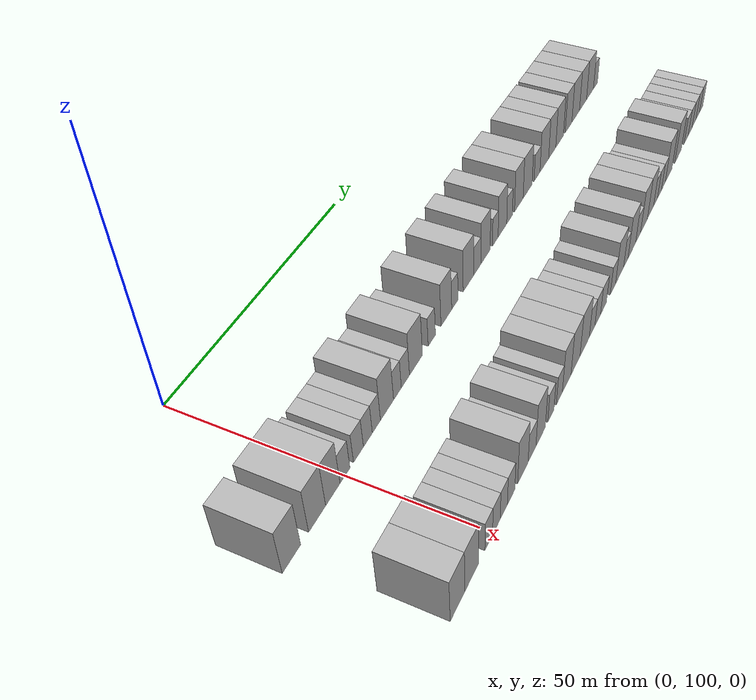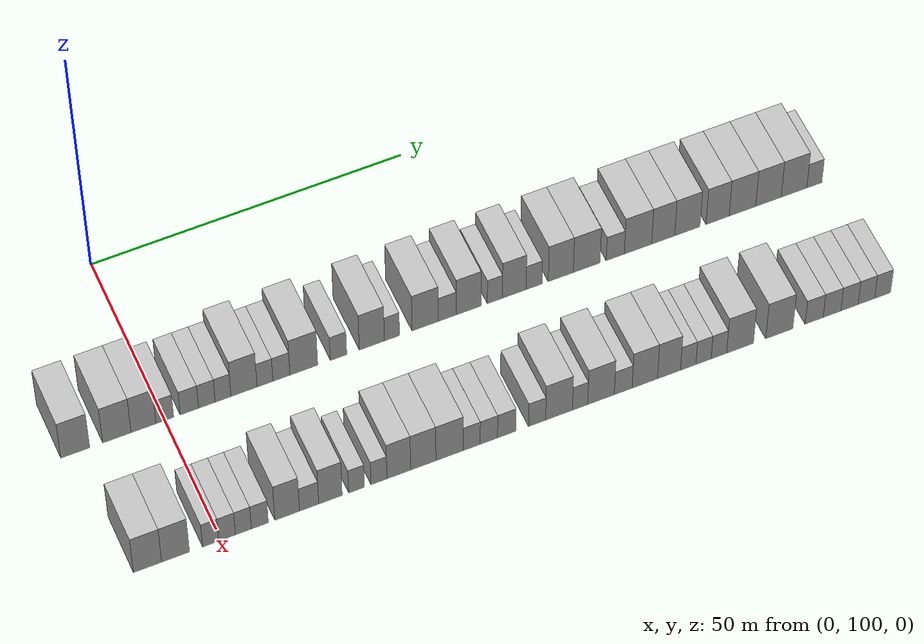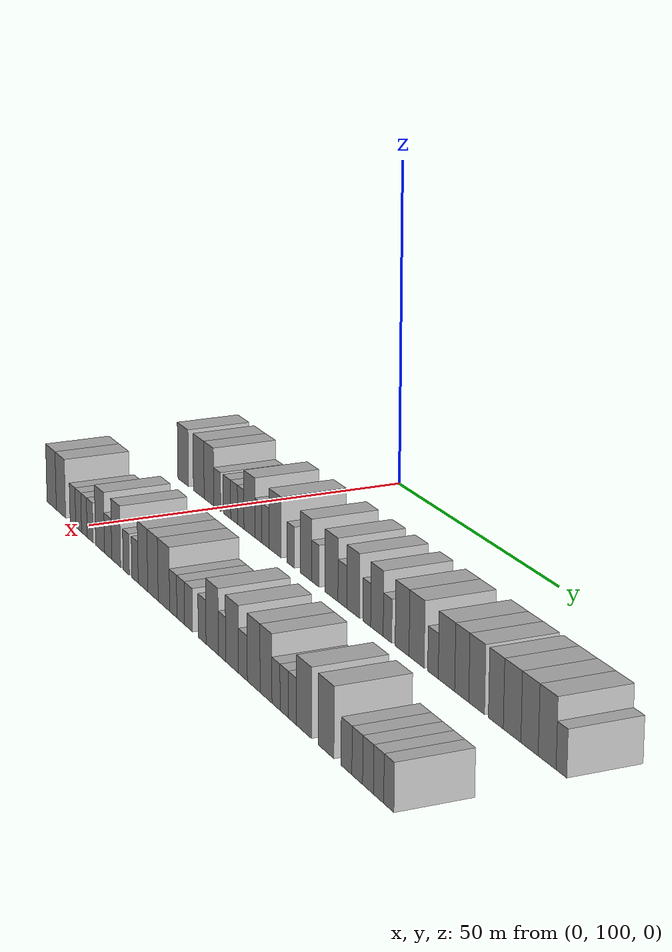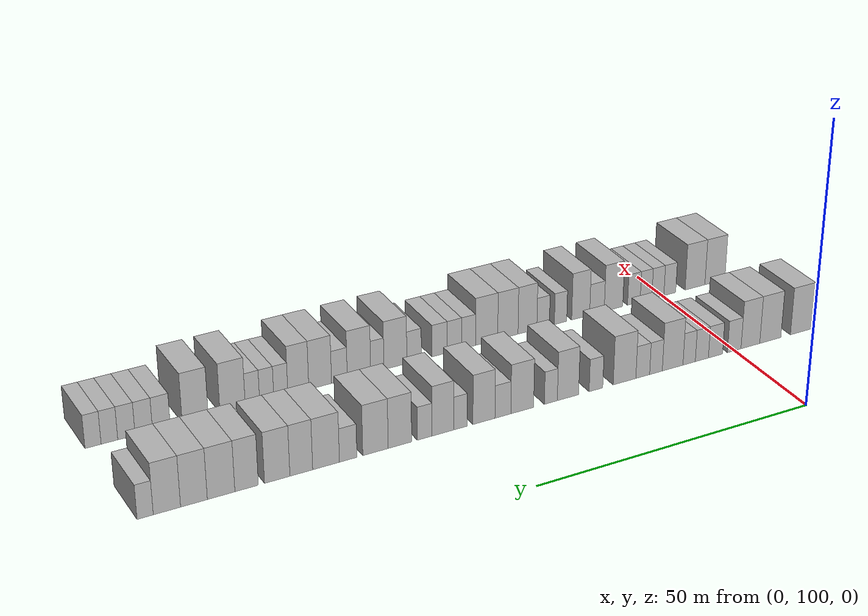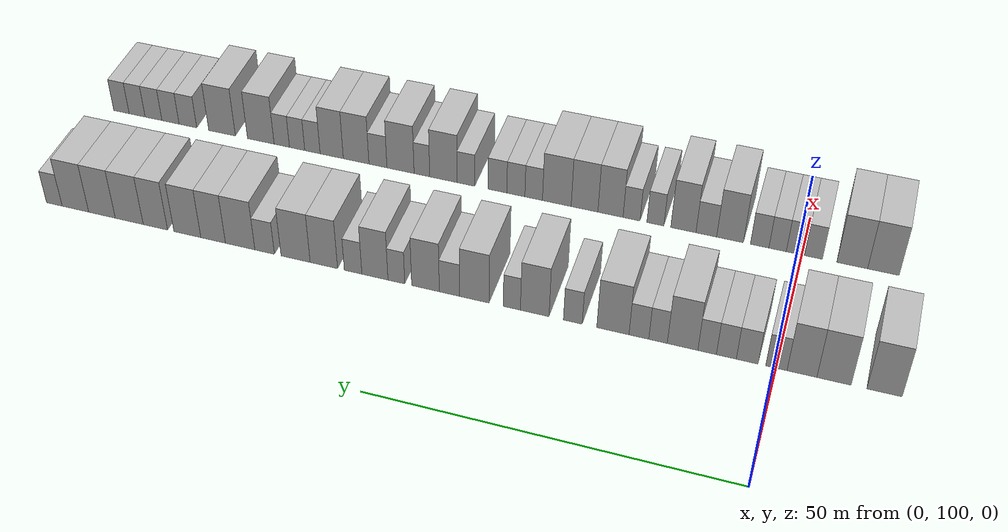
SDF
<sdf version="1.6">
 <world name="default">
  <model name="building_71">
   <static>1</static>
   <pose>25.0000 86.1556 0 0.000000 0.000000 0.000000</pose>
   <link name="link">
    <pose>0 0 4.50 0 0 0</pose>
    <collision name="collision"><geometry><box><size>10.0000 4.4614 9.0000</size></box></geometry></collision>
    <visual name="visual">
     <cast_shadows>0</cast_shadows>
     <geometry><box><size>10.0000 4.4614 9.0000</size></box></geometry>
     <material>
      <script>
       <uri>model://HANNAS_wall/materials/scripts</uri>
       <uri>model://HANNAS_wall/materials/textures</uri>
       <name>vrc/HANNAS_wall</name>
      </script>
     </material>
    </visual>
   </link>
  </model>
  <model name="building_72">
   <static>1</static>
   <pose>25.0000 92.5798 0 0.000000 0.000000 0.000000</pose>
   <link name="link">
    <pose>0 0 4.50 0 0 0</pose>
    <collision name="collision"><geometry><box><size>10.0000 4.3870 9.0000</size></box></geometry></collision>
    <visual name="visual">
     <cast_shadows>0</cast_shadows>
     <geometry><box><size>10.0000 4.3870 9.0000</size></box></geometry>
     <material>
      <script>
       <uri>model://HANNAS_wall/materials/scripts</uri>
       <uri>model://HANNAS_wall/materials/textures</uri>
       <name>vrc/HANNAS_wall</name>
      </script>
     </material>
    </visual>
   </link>
  </model>
  <model name="building_73">
   <static>1</static>
   <pose>25.0000 96.7025 0 0.000000 0.000000 0.000000</pose>
   <link name="link">
    <pose>0 0 4.50 0 0 0</pose>
    <collision name="collision"><geometry><box><size>10.0000 3.8584 9.0000</size></box></geometry></collision>
    <visual name="visual">
     <cast_shadows>0</cast_shadows>
     <geometry><box><size>10.0000 3.8584 9.0000</size></box></geometry>
     <material>
      <script>
       <uri>model://HANNAS_wall/materials/scripts</uri>
       <uri>model://HANNAS_wall/materials/textures</uri>
       <name>vrc/HANNAS_wall</name>
      </script>
     </material>
    </visual>
   </link>
  </model>
  <model name="building_74">
   <static>1</static>
   <pose>25.0000 100.0141 0 0.000000 0.000000 0.000000</pose>
   <link name="link">
    <pose>0 0 3.00 0 0 0</pose>
    <collision name="collision"><geometry><box><size>10.0000 2.7648 6.0000</size></box></geometry></collision>
    <visual name="visual">
     <cast_shadows>0</cast_shadows>
     <geometry><box><size>10.0000 2.7648 6.0000</size></box></geometry>
     <material>
      <script>
       <uri>model://HANNAS_wall/materials/scripts</uri>
       <uri>model://HANNAS_wall/materials/textures</uri>
       <name>vrc/HANNAS_wall</name>
      </script>
     </material>
    </visual>
   </link>
  </model>
  <model name="building_75">
   <static>1</static>
   <pose>25.0000 103.8246 0 0.000000 0.000000 0.000000</pose>
   <link name="link">
    <pose>0 0 3.00 0 0 0</pose>
    <collision name="collision"><geometry><box><size>10.0000 2.8562 6.0000</size></box></geometry></collision>
    <visual name="visual">
     <cast_shadows>0</cast_shadows>
     <geometry><box><size>10.0000 2.8562 6.0000</size></box></geometry>
     <material>
      <script>
       <uri>model://HANNAS_wall/materials/scripts</uri>
       <uri>model://HANNAS_wall/materials/textures</uri>
       <name>vrc/HANNAS_wall</name>
      </script>
     </material>
    </visual>
   </link>
  </model>
  <model name="building_76">
   <static>1</static>
   <pose>25.0000 106.5668 0 0.000000 0.000000 0.000000</pose>
   <link name="link">
    <pose>0 0 3.00 0 0 0</pose>
    <collision name="collision"><geometry><box><size>10.0000 2.6282 6.0000</size></box></geometry></collision>
    <visual name="visual">
     <cast_shadows>0</cast_shadows>
     <geometry><box><size>10.0000 2.6282 6.0000</size></box></geometry>
     <material>
      <script>
       <uri>model://HANNAS_wall/materials/scripts</uri>
       <uri>model://HANNAS_wall/materials/textures</uri>
       <name>vrc/HANNAS_wall</name>
      </script>
     </material>
    </visual>
   </link>
  </model>
  <model name="building_77">
   <static>1</static>
   <pose>25.0000 109.1107 0 0.000000 0.000000 0.000000</pose>
   <link name="link">
    <pose>0 0 3.00 0 0 0</pose>
    <collision name="collision"><geometry><box><size>10.0000 2.4595 6.0000</size></box></geometry></collision>
    <visual name="visual">
     <cast_shadows>0</cast_shadows>
     <geometry><box><size>10.0000 2.4595 6.0000</size></box></geometry>
     <material>
      <script>
       <uri>model://HANNAS_wall/materials/scripts</uri>
       <uri>model://HANNAS_wall/materials/textures</uri>
       <name>vrc/HANNAS_wall</name>
      </script>
     </material>
    </visual>
   </link>
  </model>
  <model name="building_78">
   <static>1</static>
   <pose>25.0000 112.3856 0 0.000000 0.000000 0.000000</pose>
   <link name="link">
    <pose>0 0 4.50 0 0 0</pose>
    <collision name="collision"><geometry><box><size>10.0000 4.0903 9.0000</size></box></geometry></collision>
    <visual name="visual">
     <cast_shadows>0</cast_shadows>
     <geometry><box><size>10.0000 4.0903 9.0000</size></box></geometry>
     <material>
      <script>
       <uri>model://HANNAS_wall/materials/scripts</uri>
       <uri>model://HANNAS_wall/materials/textures</uri>
       <name>vrc/HANNAS_wall</name>
      </script>
     </material>
    </visual>
   </link>
  </model>
  <model name="building_79">
   <static>1</static>
   <pose>25.0000 115.6744 0 0.000000 0.000000 0.000000</pose>
   <link name="link">
    <pose>0 0 3.00 0 0 0</pose>
    <collision name="collision"><geometry><box><size>10.0000 2.4874 6.0000</size></box></geometry></collision>
    <visual name="visual">
     <cast_shadows>0</cast_shadows>
     <geometry><box><size>10.0000 2.4874 6.0000</size></box></geometry>
     <material>
      <script>
       <uri>model://HANNAS_wall/materials/scripts</uri>
       <uri>model://HANNAS_wall/materials/textures</uri>
       <name>vrc/HANNAS_wall</name>
      </script>
     </material>
    </visual>
   </link>
  </model>
  <model name="building_80">
   <static>1</static>
   <pose>25.0000 118.2590 0 0.000000 0.000000 0.000000</pose>
   <link name="link">
    <pose>0 0 3.00 0 0 0</pose>
    <collision name="collision"><geometry><box><size>10.0000 2.6817 6.0000</size></box></geometry></collision>
    <visual name="visual">
     <cast_shadows>0</cast_shadows>
     <geometry><box><size>10.0000 2.6817 6.0000</size></box></geometry>
     <material>
      <script>
       <uri>model://HANNAS_wall/materials/scripts</uri>
       <uri>model://HANNAS_wall/materials/textures</uri>
       <name>vrc/HANNAS_wall</name>
      </script>
     </material>
    </visual>
   </link>
  </model>
  <model name="building_81">
   <static>1</static>
   <pose>25.0000 121.7940 0 0.000000 0.000000 0.000000</pose>
   <link name="link">
    <pose>0 0 4.50 0 0 0</pose>
    <collision name="collision"><geometry><box><size>10.0000 4.3883 9.0000</size></box></geometry></collision>
    <visual name="visual">
     <cast_shadows>0</cast_shadows>
     <geometry><box><size>10.0000 4.3883 9.0000</size></box></geometry>
     <material>
      <script>
       <uri>model://HANNAS_wall/materials/scripts</uri>
       <uri>model://HANNAS_wall/materials/textures</uri>
       <name>vrc/HANNAS_wall</name>
      </script>
     </material>
    </visual>
   </link>
  </model>
  <model name="building_82">
   <static>1</static>
   <pose>25.0000 127.2844 0 0.000000 0.000000 0.000000</pose>
   <link name="link">
    <pose>0 0 3.00 0 0 0</pose>
    <collision name="collision"><geometry><box><size>10.0000 2.5926 6.0000</size></box></geometry></collision>
    <visual name="visual">
     <cast_shadows>0</cast_shadows>
     <geometry><box><size>10.0000 2.5926 6.0000</size></box></geometry>
     <material>
      <script>
       <uri>model://HANNAS_wall/materials/scripts</uri>
       <uri>model://HANNAS_wall/materials/textures</uri>
       <name>vrc/HANNAS_wall</name>
      </script>
     </material>
    </visual>
   </link>
  </model>
  <model name="building_83">
   <static>1</static>
   <pose>25.0000 132.5786 0 0.000000 0.000000 0.000000</pose>
   <link name="link">
    <pose>0 0 4.50 0 0 0</pose>
    <collision name="collision"><geometry><box><size>10.0000 3.9959 9.0000</size></box></geometry></collision>
    <visual name="visual">
     <cast_shadows>0</cast_shadows>
     <geometry><box><size>10.0000 3.9959 9.0000</size></box></geometry>
     <material>
      <script>
       <uri>model://HANNAS_wall/materials/scripts</uri>
       <uri>model://HANNAS_wall/materials/textures</uri>
       <name>vrc/HANNAS_wall</name>
      </script>
     </material>
    </visual>
   </link>
  </model>
  <model name="building_84">
   <static>1</static>
   <pose>25.0000 135.7824 0 0.000000 0.000000 0.000000</pose>
   <link name="link">
    <pose>0 0 3.00 0 0 0</pose>
    <collision name="collision"><geometry><box><size>10.0000 2.4117 6.0000</size></box></geometry></collision>
    <visual name="visual">
     <cast_shadows>0</cast_shadows>
     <geometry><box><size>10.0000 2.4117 6.0000</size></box></geometry>
     <material>
      <script>
       <uri>model://HANNAS_wall/materials/scripts</uri>
       <uri>model://HANNAS_wall/materials/textures</uri>
       <name>vrc/HANNAS_wall</name>
      </script>
     </material>
    </visual>
   </link>
  </model>
  <model name="building_85">
   <static>1</static>
   <pose>25.0000 141.0851 0 0.000000 0.000000 0.000000</pose>
   <link name="link">
    <pose>0 0 4.50 0 0 0</pose>
    <collision name="collision"><geometry><box><size>10.0000 4.1937 9.0000</size></box></geometry></collision>
    <visual name="visual">
     <cast_shadows>0</cast_shadows>
     <geometry><box><size>10.0000 4.1937 9.0000</size></box></geometry>
     <material>
      <script>
       <uri>model://HANNAS_wall/materials/scripts</uri>
       <uri>model://HANNAS_wall/materials/textures</uri>
       <name>vrc/HANNAS_wall</name>
      </script>
     </material>
    </visual>
   </link>
  </model>
  <model name="building_86">
   <static>1</static>
   <pose>25.0000 144.6276 0 0.000000 0.000000 0.000000</pose>
   <link name="link">
    <pose>0 0 3.00 0 0 0</pose>
    <collision name="collision"><geometry><box><size>10.0000 2.8914 6.0000</size></box></geometry></collision>
    <visual name="visual">
     <cast_shadows>0</cast_shadows>
     <geometry><box><size>10.0000 2.8914 6.0000</size></box></geometry>
     <material>
      <script>
       <uri>model://HANNAS_wall/materials/scripts</uri>
       <uri>model://HANNAS_wall/materials/textures</uri>
       <name>vrc/HANNAS_wall</name>
      </script>
     </material>
    </visual>
   </link>
  </model>
  <model name="building_87">
   <static>1</static>
   <pose>25.0000 148.0644 0 0.000000 0.000000 0.000000</pose>
   <link name="link">
    <pose>0 0 4.50 0 0 0</pose>
    <collision name="collision"><geometry><box><size>10.0000 3.9823 9.0000</size></box></geometry></collision>
    <visual name="visual">
     <cast_shadows>0</cast_shadows>
     <geometry><box><size>10.0000 3.9823 9.0000</size></box></geometry>
     <material>
      <script>
       <uri>model://HANNAS_wall/materials/scripts</uri>
       <uri>model://HANNAS_wall/materials/textures</uri>
       <name>vrc/HANNAS_wall</name>
      </script>
     </material>
    </visual>
   </link>
  </model>
  <model name="building_88">
   <static>1</static>
   <pose>25.0000 152.2787 0 0.000000 0.000000 0.000000</pose>
   <link name="link">
    <pose>0 0 3.00 0 0 0</pose>
    <collision name="collision"><geometry><box><size>10.0000 2.4464 6.0000</size></box></geometry></collision>
    <visual name="visual">
     <cast_shadows>0</cast_shadows>
     <geometry><box><size>10.0000 2.4464 6.0000</size></box></geometry>
     <material>
      <script>
       <uri>model://HANNAS_wall/materials/scripts</uri>
       <uri>model://HANNAS_wall/materials/textures</uri>
       <name>vrc/HANNAS_wall</name>
      </script>
     </material>
    </visual>
   </link>
  </model>
  <model name="building_89">
   <static>1</static>
   <pose>25.0000 155.4124 0 0.000000 0.000000 0.000000</pose>
   <link name="link">
    <pose>0 0 4.50 0 0 0</pose>
    <collision name="collision"><geometry><box><size>10.0000 3.8210 9.0000</size></box></geometry></collision>
    <visual name="visual">
     <cast_shadows>0</cast_shadows>
     <geometry><box><size>10.0000 3.8210 9.0000</size></box></geometry>
     <material>
      <script>
       <uri>model://HANNAS_wall/materials/scripts</uri>
       <uri>model://HANNAS_wall/materials/textures</uri>
       <name>vrc/HANNAS_wall</name>
      </script>
     </material>
    </visual>
   </link>
  </model>
  <model name="building_90">
   <static>1</static>
   <pose>25.0000 158.6131 0 0.000000 0.000000 0.000000</pose>
   <link name="link">
    <pose>0 0 3.00 0 0 0</pose>
    <collision name="collision"><geometry><box><size>10.0000 2.5803 6.0000</size></box></geometry></collision>
    <visual name="visual">
     <cast_shadows>0</cast_shadows>
     <geometry><box><size>10.0000 2.5803 6.0000</size></box></geometry>
     <material>
      <script>
       <uri>model://HANNAS_wall/materials/scripts</uri>
       <uri>model://HANNAS_wall/materials/textures</uri>
       <name>vrc/HANNAS_wall</name>
      </script>
     </material>
    </visual>
   </link>
  </model>
  <model name="building_91">
   <static>1</static>
   <pose>25.0000 162.9408 0 0.000000 0.000000 0.000000</pose>
   <link name="link">
    <pose>0 0 4.50 0 0 0</pose>
    <collision name="collision"><geometry><box><size>10.0000 4.0751 9.0000</size></box></geometry></collision>
    <visual name="visual">
     <cast_shadows>0</cast_shadows>
     <geometry><box><size>10.0000 4.0751 9.0000</size></box></geometry>
     <material>
      <script>
       <uri>model://HANNAS_wall/materials/scripts</uri>
       <uri>model://HANNAS_wall/materials/textures</uri>
       <name>vrc/HANNAS_wall</name>
      </script>
     </material>
    </visual>
   </link>
  </model>
  <model name="building_92">
   <static>1</static>
   <pose>25.0000 167.1578 0 0.000000 0.000000 0.000000</pose>
   <link name="link">
    <pose>0 0 4.50 0 0 0</pose>
    <collision name="collision"><geometry><box><size>10.0000 4.3589 9.0000</size></box></geometry></collision>
    <visual name="visual">
     <cast_shadows>0</cast_shadows>
     <geometry><box><size>10.0000 4.3589 9.0000</size></box></geometry>
     <material>
      <script>
       <uri>model://HANNAS_wall/materials/scripts</uri>
       <uri>model://HANNAS_wall/materials/textures</uri>
       <name>vrc/HANNAS_wall</name>
      </script>
     </material>
    </visual>
   </link>
  </model>
  <model name="building_93">
   <static>1</static>
   <pose>25.0000 171.8184 0 0.000000 0.000000 0.000000</pose>
   <link name="link">
    <pose>0 0 3.00 0 0 0</pose>
    <collision name="collision"><geometry><box><size>10.0000 2.9621 6.0000</size></box></geometry></collision>
    <visual name="visual">
     <cast_shadows>0</cast_shadows>
     <geometry><box><size>10.0000 2.9621 6.0000</size></box></geometry>
     <material>
      <script>
       <uri>model://HANNAS_wall/materials/scripts</uri>
       <uri>model://HANNAS_wall/materials/textures</uri>
       <name>vrc/HANNAS_wall</name>
      </script>
     </material>
    </visual>
   </link>
  </model>
  <model name="building_94">
   <static>1</static>
   <pose>25.0000 175.5442 0 0.000000 0.000000 0.000000</pose>
   <link name="link">
    <pose>0 0 4.50 0 0 0</pose>
    <collision name="collision"><geometry><box><size>10.0000 4.4895 9.0000</size></box></geometry></collision>
    <visual name="visual">
     <cast_shadows>0</cast_shadows>
     <geometry><box><size>10.0000 4.4895 9.0000</size></box></geometry>
     <material>
      <script>
       <uri>model://HANNAS_wall/materials/scripts</uri>
       <uri>model://HANNAS_wall/materials/textures</uri>
       <name>vrc/HANNAS_wall</name>
      </script>
     </material>
    </visual>
   </link>
  </model>
  <model name="building_95">
   <static>1</static>
   <pose>25.0000 179.6817 0 0.000000 0.000000 0.000000</pose>
   <link name="link">
    <pose>0 0 4.50 0 0 0</pose>
    <collision name="collision"><geometry><box><size>10.0000 3.7855 9.0000</size></box></geometry></collision>
    <visual name="visual">
     <cast_shadows>0</cast_shadows>
     <geometry><box><size>10.0000 3.7855 9.0000</size></box></geometry>
     <material>
      <script>
       <uri>model://HANNAS_wall/materials/scripts</uri>
       <uri>model://HANNAS_wall/materials/textures</uri>
       <name>vrc/HANNAS_wall</name>
      </script>
     </material>
    </visual>
   </link>
  </model>
  <model name="building_96">
   <static>1</static>
   <pose>25.0000 183.6582 0 0.000000 0.000000 0.000000</pose>
   <link name="link">
    <pose>0 0 4.50 0 0 0</pose>
    <collision name="collision"><geometry><box><size>10.0000 4.1674 9.0000</size></box></geometry></collision>
    <visual name="visual">
     <cast_shadows>0</cast_shadows>
     <geometry><box><size>10.0000 4.1674 9.0000</size></box></geometry>
     <material>
      <script>
       <uri>model://HANNAS_wall/materials/scripts</uri>
       <uri>model://HANNAS_wall/materials/textures</uri>
       <name>vrc/HANNAS_wall</name>
      </script>
     </material>
    </visual>
   </link>
  </model>
  <model name="building_97">
   <static>1</static>
   <pose>25.0000 188.6460 0 0.000000 0.000000 0.000000</pose>
   <link name="link">
    <pose>0 0 4.50 0 0 0</pose>
    <collision name="collision"><geometry><box><size>10.0000 3.8082 9.0000</size></box></geometry></collision>
    <visual name="visual">
     <cast_shadows>0</cast_shadows>
     <geometry><box><size>10.0000 3.8082 9.0000</size></box></geometry>
     <material>
      <script>
       <uri>model://HANNAS_wall/materials/scripts</uri>
       <uri>model://HANNAS_wall/materials/textures</uri>
       <name>vrc/HANNAS_wall</name>
      </script>
     </material>
    </visual>
   </link>
  </model>
  <model name="building_98">
   <static>1</static>
   <pose>25.0000 192.7561 0 0.000000 0.000000 0.000000</pose>
   <link name="link">
    <pose>0 0 4.50 0 0 0</pose>
    <collision name="collision"><geometry><box><size>10.0000 4.4121 9.0000</size></box></geometry></collision>
    <visual name="visual">
     <cast_shadows>0</cast_shadows>
     <geometry><box><size>10.0000 4.4121 9.0000</size></box></geometry>
     <material>
      <script>
       <uri>model://HANNAS_wall/materials/scripts</uri>
       <uri>model://HANNAS_wall/materials/textures</uri>
       <name>vrc/HANNAS_wall</name>
      </script>
     </material>
    </visual>
   </link>
  </model>
  <model name="building_99">
   <static>1</static>
   <pose>25.0000 197.0801 0 0.000000 0.000000 0.000000</pose>
   <link name="link">
    <pose>0 0 4.50 0 0 0</pose>
    <collision name="collision"><geometry><box><size>10.0000 4.2360 9.0000</size></box></geometry></collision>
    <visual name="visual">
     <cast_shadows>0</cast_shadows>
     <geometry><box><size>10.0000 4.2360 9.0000</size></box></geometry>
     <material>
      <script>
       <uri>model://HANNAS_wall/materials/scripts</uri>
       <uri>model://HANNAS_wall/materials/textures</uri>
       <name>vrc/HANNAS_wall</name>
      </script>
     </material>
    </visual>
   </link>
  </model>
  <model name="building_100">
   <static>1</static>
   <pose>25.0000 201.3331 0 0.000000 0.000000 0.000000</pose>
   <link name="link">
    <pose>0 0 4.50 0 0 0</pose>
    <collision name="collision"><geometry><box><size>10.0000 4.2700 9.0000</size></box></geometry></collision>
    <visual name="visual">
     <cast_shadows>0</cast_shadows>
     <geometry><box><size>10.0000 4.2700 9.0000</size></box></geometry>
     <material>
      <script>
       <uri>model://HANNAS_wall/materials/scripts</uri>
       <uri>model://HANNAS_wall/materials/textures</uri>
       <name>vrc/HANNAS_wall</name>
      </script>
     </material>
    </visual>
   </link>
  </model>
  <model name="building_101">
   <static>1</static>
   <pose>25.0000 204.7250 0 0.000000 0.000000 0.000000</pose>
   <link name="link">
    <pose>0 0 3.00 0 0 0</pose>
    <collision name="collision"><geometry><box><size>10.0000 2.5139 6.0000</size></box></geometry></collision>
    <visual name="visual">
     <cast_shadows>0</cast_shadows>
     <geometry><box><size>10.0000 2.5139 6.0000</size></box></geometry>
     <material>
      <script>
       <uri>model://HANNAS_wall/materials/scripts</uri>
       <uri>model://HANNAS_wall/materials/textures</uri>
       <name>vrc/HANNAS_wall</name>
      </script>
     </material>
    </visual>
   </link>
  </model>
  <model name="building_162">
   <static>1</static>
   <pose>47.0000 88.7932 0 0.000000 0.000000 0.000000</pose>
   <link name="link">
    <pose>0 0 4.50 0 0 0</pose>
    <collision name="collision"><geometry><box><size>10.0000 4.3072 9.0000</size></box></geometry></collision>
    <visual name="visual">
     <cast_shadows>0</cast_shadows>
     <geometry><box><size>10.0000 4.3072 9.0000</size></box></geometry>
     <material>
      <script>
       <uri>model://HANNAS_wall/materials/scripts</uri>
       <uri>model://HANNAS_wall/materials/textures</uri>
       <name>vrc/HANNAS_wall</name>
      </script>
     </material>
    </visual>
   </link>
  </model>
  <model name="building_163">
   <static>1</static>
   <pose>47.0000 93.0642 0 0.000000 0.000000 0.000000</pose>
   <link name="link">
    <pose>0 0 4.50 0 0 0</pose>
    <collision name="collision"><geometry><box><size>10.0000 4.2347 9.0000</size></box></geometry></collision>
    <visual name="visual">
     <cast_shadows>0</cast_shadows>
     <geometry><box><size>10.0000 4.2347 9.0000</size></box></geometry>
     <material>
      <script>
       <uri>model://HANNAS_wall/materials/scripts</uri>
       <uri>model://HANNAS_wall/materials/textures</uri>
       <name>vrc/HANNAS_wall</name>
      </script>
     </material>
    </visual>
   </link>
  </model>
  <model name="building_164">
   <static>1</static>
   <pose>47.0000 98.4299 0 0.000000 0.000000 0.000000</pose>
   <link name="link">
    <pose>0 0 3.00 0 0 0</pose>
    <collision name="collision"><geometry><box><size>10.0000 2.4966 6.0000</size></box></geometry></collision>
    <visual name="visual">
     <cast_shadows>0</cast_shadows>
     <geometry><box><size>10.0000 2.4966 6.0000</size></box></geometry>
     <material>
      <script>
       <uri>model://HANNAS_wall/materials/scripts</uri>
       <uri>model://HANNAS_wall/materials/textures</uri>
       <name>vrc/HANNAS_wall</name>
      </script>
     </material>
    </visual>
   </link>
  </model>
  <model name="building_165">
   <static>1</static>
   <pose>47.0000 100.9465 0 0.000000 0.000000 0.000000</pose>
   <link name="link">
    <pose>0 0 3.00 0 0 0</pose>
    <collision name="collision"><geometry><box><size>10.0000 2.5367 6.0000</size></box></geometry></collision>
    <visual name="visual">
     <cast_shadows>0</cast_shadows>
     <geometry><box><size>10.0000 2.5367 6.0000</size></box></geometry>
     <material>
      <script>
       <uri>model://HANNAS_wall/materials/scripts</uri>
       <uri>model://HANNAS_wall/materials/textures</uri>
       <name>vrc/HANNAS_wall</name>
      </script>
     </material>
    </visual>
   </link>
  </model>
  <model name="building_166">
   <static>1</static>
   <pose>47.0000 103.4378 0 0.000000 0.000000 0.000000</pose>
   <link name="link">
    <pose>0 0 3.00 0 0 0</pose>
    <collision name="collision"><geometry><box><size>10.0000 2.4459 6.0000</size></box></geometry></collision>
    <visual name="visual">
     <cast_shadows>0</cast_shadows>
     <geometry><box><size>10.0000 2.4459 6.0000</size></box></geometry>
     <material>
      <script>
       <uri>model://HANNAS_wall/materials/scripts</uri>
       <uri>model://HANNAS_wall/materials/textures</uri>
       <name>vrc/HANNAS_wall</name>
      </script>
     </material>
    </visual>
   </link>
  </model>
  <model name="building_167">
   <static>1</static>
   <pose>47.0000 105.9670 0 0.000000 0.000000 0.000000</pose>
   <link name="link">
    <pose>0 0 3.00 0 0 0</pose>
    <collision name="collision"><geometry><box><size>10.0000 2.6124 6.0000</size></box></geometry></collision>
    <visual name="visual">
     <cast_shadows>0</cast_shadows>
     <geometry><box><size>10.0000 2.6124 6.0000</size></box></geometry>
     <material>
      <script>
       <uri>model://HANNAS_wall/materials/scripts</uri>
       <uri>model://HANNAS_wall/materials/textures</uri>
       <name>vrc/HANNAS_wall</name>
      </script>
     </material>
    </visual>
   </link>
  </model>
  <model name="building_168">
   <static>1</static>
   <pose>47.0000 110.1756 0 0.000000 0.000000 0.000000</pose>
   <link name="link">
    <pose>0 0 4.50 0 0 0</pose>
    <collision name="collision"><geometry><box><size>10.0000 3.8049 9.0000</size></box></geometry></collision>
    <visual name="visual">
     <cast_shadows>0</cast_shadows>
     <geometry><box><size>10.0000 3.8049 9.0000</size></box></geometry>
     <material>
      <script>
       <uri>model://HANNAS_wall/materials/scripts</uri>
       <uri>model://HANNAS_wall/materials/textures</uri>
       <name>vrc/HANNAS_wall</name>
      </script>
     </material>
    </visual>
   </link>
  </model>
  <model name="building_169">
   <static>1</static>
   <pose>47.0000 113.5636 0 0.000000 0.000000 0.000000</pose>
   <link name="link">
    <pose>0 0 3.00 0 0 0</pose>
    <collision name="collision"><geometry><box><size>10.0000 2.9711 6.0000</size></box></geometry></collision>
    <visual name="visual">
     <cast_shadows>0</cast_shadows>
     <geometry><box><size>10.0000 2.9711 6.0000</size></box></geometry>
     <material>
      <script>
       <uri>model://HANNAS_wall/materials/scripts</uri>
       <uri>model://HANNAS_wall/materials/textures</uri>
       <name>vrc/HANNAS_wall</name>
      </script>
     </material>
    </visual>
   </link>
  </model>
  <model name="building_170">
   <static>1</static>
   <pose>47.0000 116.8698 0 0.000000 0.000000 0.000000</pose>
   <link name="link">
    <pose>0 0 4.50 0 0 0</pose>
    <collision name="collision"><geometry><box><size>10.0000 3.6413 9.0000</size></box></geometry></collision>
    <visual name="visual">
     <cast_shadows>0</cast_shadows>
     <geometry><box><size>10.0000 3.6413 9.0000</size></box></geometry>
     <material>
      <script>
       <uri>model://HANNAS_wall/materials/scripts</uri>
       <uri>model://HANNAS_wall/materials/textures</uri>
       <name>vrc/HANNAS_wall</name>
      </script>
     </material>
    </visual>
   </link>
  </model>
  <model name="building_171">
   <static>1</static>
   <pose>47.0000 120.9247 0 0.000000 0.000000 0.000000</pose>
   <link name="link">
    <pose>0 0 3.00 0 0 0</pose>
    <collision name="collision"><geometry><box><size>10.0000 2.4685 6.0000</size></box></geometry></collision>
    <visual name="visual">
     <cast_shadows>0</cast_shadows>
     <geometry><box><size>10.0000 2.4685 6.0000</size></box></geometry>
     <material>
      <script>
       <uri>model://HANNAS_wall/materials/scripts</uri>
       <uri>model://HANNAS_wall/materials/textures</uri>
       <name>vrc/HANNAS_wall</name>
      </script>
     </material>
    </visual>
   </link>
  </model>
  <model name="building_172">
   <static>1</static>
   <pose>47.0000 124.4034 0 0.000000 0.000000 0.000000</pose>
   <link name="link">
    <pose>0 0 3.00 0 0 0</pose>
    <collision name="collision"><geometry><box><size>10.0000 2.4889 6.0000</size></box></geometry></collision>
    <visual name="visual">
     <cast_shadows>0</cast_shadows>
     <geometry><box><size>10.0000 2.4889 6.0000</size></box></geometry>
     <material>
      <script>
       <uri>model://HANNAS_wall/materials/scripts</uri>
       <uri>model://HANNAS_wall/materials/textures</uri>
       <name>vrc/HANNAS_wall</name>
      </script>
     </material>
    </visual>
   </link>
  </model>
  <model name="building_173">
   <static>1</static>
   <pose>47.0000 127.5035 0 0.000000 0.000000 0.000000</pose>
   <link name="link">
    <pose>0 0 4.50 0 0 0</pose>
    <collision name="collision"><geometry><box><size>10.0000 3.7114 9.0000</size></box></geometry></collision>
    <visual name="visual">
     <cast_shadows>0</cast_shadows>
     <geometry><box><size>10.0000 3.7114 9.0000</size></box></geometry>
     <material>
      <script>
       <uri>model://HANNAS_wall/materials/scripts</uri>
       <uri>model://HANNAS_wall/materials/textures</uri>
       <name>vrc/HANNAS_wall</name>
      </script>
     </material>
    </visual>
   </link>
  </model>
  <model name="building_174">
   <static>1</static>
   <pose>47.0000 131.3468 0 0.000000 0.000000 0.000000</pose>
   <link name="link">
    <pose>0 0 4.50 0 0 0</pose>
    <collision name="collision"><geometry><box><size>10.0000 3.9752 9.0000</size></box></geometry></collision>
    <visual name="visual">
     <cast_shadows>0</cast_shadows>
     <geometry><box><size>10.0000 3.9752 9.0000</size></box></geometry>
     <material>
      <script>
       <uri>model://HANNAS_wall/materials/scripts</uri>
       <uri>model://HANNAS_wall/materials/textures</uri>
       <name>vrc/HANNAS_wall</name>
      </script>
     </material>
    </visual>
   </link>
  </model>
  <model name="building_175">
   <static>1</static>
   <pose>47.0000 135.4828 0 0.000000 0.000000 0.000000</pose>
   <link name="link">
    <pose>0 0 4.50 0 0 0</pose>
    <collision name="collision"><geometry><box><size>10.0000 4.2967 9.0000</size></box></geometry></collision>
    <visual name="visual">
     <cast_shadows>0</cast_shadows>
     <geometry><box><size>10.0000 4.2967 9.0000</size></box></geometry>
     <material>
      <script>
       <uri>model://HANNAS_wall/materials/scripts</uri>
       <uri>model://HANNAS_wall/materials/textures</uri>
       <name>vrc/HANNAS_wall</name>
      </script>
     </material>
    </visual>
   </link>
  </model>
  <model name="building_176">
   <static>1</static>
   <pose>47.0000 138.9571 0 0.000000 0.000000 0.000000</pose>
   <link name="link">
    <pose>0 0 3.00 0 0 0</pose>
    <collision name="collision"><geometry><box><size>10.0000 2.6521 6.0000</size></box></geometry></collision>
    <visual name="visual">
     <cast_shadows>0</cast_shadows>
     <geometry><box><size>10.0000 2.6521 6.0000</size></box></geometry>
     <material>
      <script>
       <uri>model://HANNAS_wall/materials/scripts</uri>
       <uri>model://HANNAS_wall/materials/textures</uri>
       <name>vrc/HANNAS_wall</name>
      </script>
     </material>
    </visual>
   </link>
  </model>
  <model name="building_177">
   <static>1</static>
   <pose>47.0000 141.6516 0 0.000000 0.000000 0.000000</pose>
   <link name="link">
    <pose>0 0 3.00 0 0 0</pose>
    <collision name="collision"><geometry><box><size>10.0000 2.7368 6.0000</size></box></geometry></collision>
    <visual name="visual">
     <cast_shadows>0</cast_shadows>
     <geometry><box><size>10.0000 2.7368 6.0000</size></box></geometry>
     <material>
      <script>
       <uri>model://HANNAS_wall/materials/scripts</uri>
       <uri>model://HANNAS_wall/materials/textures</uri>
       <name>vrc/HANNAS_wall</name>
      </script>
     </material>
    </visual>
   </link>
  </model>
  <model name="building_178">
   <static>1</static>
   <pose>47.0000 144.4690 0 0.000000 0.000000 0.000000</pose>
   <link name="link">
    <pose>0 0 3.00 0 0 0</pose>
    <collision name="collision"><geometry><box><size>10.0000 2.8980 6.0000</size></box></geometry></collision>
    <visual name="visual">
     <cast_shadows>0</cast_shadows>
     <geometry><box><size>10.0000 2.8980 6.0000</size></box></geometry>
     <material>
      <script>
       <uri>model://HANNAS_wall/materials/scripts</uri>
       <uri>model://HANNAS_wall/materials/textures</uri>
       <name>vrc/HANNAS_wall</name>
      </script>
     </material>
    </visual>
   </link>
  </model>
  <model name="building_179">
   <static>1</static>
   <pose>47.0000 149.2728 0 0.000000 0.000000 0.000000</pose>
   <link name="link">
    <pose>0 0 3.00 0 0 0</pose>
    <collision name="collision"><geometry><box><size>10.0000 2.7096 6.0000</size></box></geometry></collision>
    <visual name="visual">
     <cast_shadows>0</cast_shadows>
     <geometry><box><size>10.0000 2.7096 6.0000</size></box></geometry>
     <material>
      <script>
       <uri>model://HANNAS_wall/materials/scripts</uri>
       <uri>model://HANNAS_wall/materials/textures</uri>
       <name>vrc/HANNAS_wall</name>
      </script>
     </material>
    </visual>
   </link>
  </model>
  <model name="building_180">
   <static>1</static>
   <pose>47.0000 152.7543 0 0.000000 0.000000 0.000000</pose>
   <link name="link">
    <pose>0 0 4.50 0 0 0</pose>
    <collision name="collision"><geometry><box><size>10.0000 4.2535 9.0000</size></box></geometry></collision>
    <visual name="visual">
     <cast_shadows>0</cast_shadows>
     <geometry><box><size>10.0000 4.2535 9.0000</size></box></geometry>
     <material>
      <script>
       <uri>model://HANNAS_wall/materials/scripts</uri>
       <uri>model://HANNAS_wall/materials/textures</uri>
       <name>vrc/HANNAS_wall</name>
      </script>
     </material>
    </visual>
   </link>
  </model>
  <model name="building_181">
   <static>1</static>
   <pose>47.0000 156.0975 0 0.000000 0.000000 0.000000</pose>
   <link name="link">
    <pose>0 0 3.00 0 0 0</pose>
    <collision name="collision"><geometry><box><size>10.0000 2.4329 6.0000</size></box></geometry></collision>
    <visual name="visual">
     <cast_shadows>0</cast_shadows>
     <geometry><box><size>10.0000 2.4329 6.0000</size></box></geometry>
     <material>
      <script>
       <uri>model://HANNAS_wall/materials/scripts</uri>
       <uri>model://HANNAS_wall/materials/textures</uri>
       <name>vrc/HANNAS_wall</name>
      </script>
     </material>
    </visual>
   </link>
  </model>
  <model name="building_182">
   <static>1</static>
   <pose>47.0000 159.4474 0 0.000000 0.000000 0.000000</pose>
   <link name="link">
    <pose>0 0 4.50 0 0 0</pose>
    <collision name="collision"><geometry><box><size>10.0000 4.2669 9.0000</size></box></geometry></collision>
    <visual name="visual">
     <cast_shadows>0</cast_shadows>
     <geometry><box><size>10.0000 4.2669 9.0000</size></box></geometry>
     <material>
      <script>
       <uri>model://HANNAS_wall/materials/scripts</uri>
       <uri>model://HANNAS_wall/materials/textures</uri>
       <name>vrc/HANNAS_wall</name>
      </script>
     </material>
    </visual>
   </link>
  </model>
  <model name="building_183">
   <static>1</static>
   <pose>47.0000 163.0018 0 0.000000 0.000000 0.000000</pose>
   <link name="link">
    <pose>0 0 3.00 0 0 0</pose>
    <collision name="collision"><geometry><box><size>10.0000 2.8421 6.0000</size></box></geometry></collision>
    <visual name="visual">
     <cast_shadows>0</cast_shadows>
     <geometry><box><size>10.0000 2.8421 6.0000</size></box></geometry>
     <material>
      <script>
       <uri>model://HANNAS_wall/materials/scripts</uri>
       <uri>model://HANNAS_wall/materials/textures</uri>
       <name>vrc/HANNAS_wall</name>
      </script>
     </material>
    </visual>
   </link>
  </model>
  <model name="building_184">
   <static>1</static>
   <pose>47.0000 166.4613 0 0.000000 0.000000 0.000000</pose>
   <link name="link">
    <pose>0 0 4.50 0 0 0</pose>
    <collision name="collision"><geometry><box><size>10.0000 4.0768 9.0000</size></box></geometry></collision>
    <visual name="visual">
     <cast_shadows>0</cast_shadows>
     <geometry><box><size>10.0000 4.0768 9.0000</size></box></geometry>
     <material>
      <script>
       <uri>model://HANNAS_wall/materials/scripts</uri>
       <uri>model://HANNAS_wall/materials/textures</uri>
       <name>vrc/HANNAS_wall</name>
      </script>
     </material>
    </visual>
   </link>
  </model>
  <model name="building_185">
   <static>1</static>
   <pose>47.0000 170.3555 0 0.000000 0.000000 0.000000</pose>
   <link name="link">
    <pose>0 0 4.50 0 0 0</pose>
    <collision name="collision"><geometry><box><size>10.0000 3.7116 9.0000</size></box></geometry></collision>
    <visual name="visual">
     <cast_shadows>0</cast_shadows>
     <geometry><box><size>10.0000 3.7116 9.0000</size></box></geometry>
     <material>
      <script>
       <uri>model://HANNAS_wall/materials/scripts</uri>
       <uri>model://HANNAS_wall/materials/textures</uri>
       <name>vrc/HANNAS_wall</name>
      </script>
     </material>
    </visual>
   </link>
  </model>
  <model name="building_186">
   <static>1</static>
   <pose>47.0000 173.4484 0 0.000000 0.000000 0.000000</pose>
   <link name="link">
    <pose>0 0 3.00 0 0 0</pose>
    <collision name="collision"><geometry><box><size>10.0000 2.4741 6.0000</size></box></geometry></collision>
    <visual name="visual">
     <cast_shadows>0</cast_shadows>
     <geometry><box><size>10.0000 2.4741 6.0000</size></box></geometry>
     <material>
      <script>
       <uri>model://HANNAS_wall/materials/scripts</uri>
       <uri>model://HANNAS_wall/materials/textures</uri>
       <name>vrc/HANNAS_wall</name>
      </script>
     </material>
    </visual>
   </link>
  </model>
  <model name="building_187">
   <static>1</static>
   <pose>47.0000 175.9246 0 0.000000 0.000000 0.000000</pose>
   <link name="link">
    <pose>0 0 3.00 0 0 0</pose>
    <collision name="collision"><geometry><box><size>10.0000 2.4785 6.0000</size></box></geometry></collision>
    <visual name="visual">
     <cast_shadows>0</cast_shadows>
     <geometry><box><size>10.0000 2.4785 6.0000</size></box></geometry>
     <material>
      <script>
       <uri>model://HANNAS_wall/materials/scripts</uri>
       <uri>model://HANNAS_wall/materials/textures</uri>
       <name>vrc/HANNAS_wall</name>
      </script>
     </material>
    </visual>
   </link>
  </model>
  <model name="building_188">
   <static>1</static>
   <pose>47.0000 178.4140 0 0.000000 0.000000 0.000000</pose>
   <link name="link">
    <pose>0 0 3.00 0 0 0</pose>
    <collision name="collision"><geometry><box><size>10.0000 2.5002 6.0000</size></box></geometry></collision>
    <visual name="visual">
     <cast_shadows>0</cast_shadows>
     <geometry><box><size>10.0000 2.5002 6.0000</size></box></geometry>
     <material>
      <script>
       <uri>model://HANNAS_wall/materials/scripts</uri>
       <uri>model://HANNAS_wall/materials/textures</uri>
       <name>vrc/HANNAS_wall</name>
      </script>
     </material>
    </visual>
   </link>
  </model>
  <model name="building_189">
   <static>1</static>
   <pose>47.0000 181.8423 0 0.000000 0.000000 0.000000</pose>
   <link name="link">
    <pose>0 0 4.50 0 0 0</pose>
    <collision name="collision"><geometry><box><size>10.0000 4.3565 9.0000</size></box></geometry></collision>
    <visual name="visual">
     <cast_shadows>0</cast_shadows>
     <geometry><box><size>10.0000 4.3565 9.0000</size></box></geometry>
     <material>
      <script>
       <uri>model://HANNAS_wall/materials/scripts</uri>
       <uri>model://HANNAS_wall/materials/textures</uri>
       <name>vrc/HANNAS_wall</name>
      </script>
     </material>
    </visual>
   </link>
  </model>
  <model name="building_190">
   <static>1</static>
   <pose>47.0000 188.2296 0 0.000000 0.000000 0.000000</pose>
   <link name="link">
    <pose>0 0 4.50 0 0 0</pose>
    <collision name="collision"><geometry><box><size>10.0000 4.4181 9.0000</size></box></geometry></collision>
    <visual name="visual">
     <cast_shadows>0</cast_shadows>
     <geometry><box><size>10.0000 4.4181 9.0000</size></box></geometry>
     <material>
      <script>
       <uri>model://HANNAS_wall/materials/scripts</uri>
       <uri>model://HANNAS_wall/materials/textures</uri>
       <name>vrc/HANNAS_wall</name>
      </script>
     </material>
    </visual>
   </link>
  </model>
  <model name="building_191">
   <static>1</static>
   <pose>47.0000 193.9184 0 0.000000 0.000000 0.000000</pose>
   <link name="link">
    <pose>0 0 3.00 0 0 0</pose>
    <collision name="collision"><geometry><box><size>10.0000 2.9596 6.0000</size></box></geometry></collision>
    <visual name="visual">
     <cast_shadows>0</cast_shadows>
     <geometry><box><size>10.0000 2.9596 6.0000</size></box></geometry>
     <material>
      <script>
       <uri>model://HANNAS_wall/materials/scripts</uri>
       <uri>model://HANNAS_wall/materials/textures</uri>
       <name>vrc/HANNAS_wall</name>
      </script>
     </material>
    </visual>
   </link>
  </model>
  <model name="building_192">
   <static>1</static>
   <pose>47.0000 196.8417 0 0.000000 0.000000 0.000000</pose>
   <link name="link">
    <pose>0 0 3.00 0 0 0</pose>
    <collision name="collision"><geometry><box><size>10.0000 2.8869 6.0000</size></box></geometry></collision>
    <visual name="visual">
     <cast_shadows>0</cast_shadows>
     <geometry><box><size>10.0000 2.8869 6.0000</size></box></geometry>
     <material>
      <script>
       <uri>model://HANNAS_wall/materials/scripts</uri>
       <uri>model://HANNAS_wall/materials/textures</uri>
       <name>vrc/HANNAS_wall</name>
      </script>
     </material>
    </visual>
   </link>
  </model>
  <model name="building_193">
   <static>1</static>
   <pose>47.0000 199.7092 0 0.000000 0.000000 0.000000</pose>
   <link name="link">
    <pose>0 0 3.00 0 0 0</pose>
    <collision name="collision"><geometry><box><size>10.0000 2.8480 6.0000</size></box></geometry></collision>
    <visual name="visual">
     <cast_shadows>0</cast_shadows>
     <geometry><box><size>10.0000 2.8480 6.0000</size></box></geometry>
     <material>
      <script>
       <uri>model://HANNAS_wall/materials/scripts</uri>
       <uri>model://HANNAS_wall/materials/textures</uri>
       <name>vrc/HANNAS_wall</name>
      </script>
     </material>
    </visual>
   </link>
  </model>
  <model name="building_194">
   <static>1</static>
   <pose>47.0000 202.4924 0 0.000000 0.000000 0.000000</pose>
   <link name="link">
    <pose>0 0 3.00 0 0 0</pose>
    <collision name="collision"><geometry><box><size>10.0000 2.7183 6.0000</size></box></geometry></collision>
    <visual name="visual">
     <cast_shadows>0</cast_shadows>
     <geometry><box><size>10.0000 2.7183 6.0000</size></box></geometry>
     <material>
      <script>
       <uri>model://HANNAS_wall/materials/scripts</uri>
       <uri>model://HANNAS_wall/materials/textures</uri>
       <name>vrc/HANNAS_wall</name>
      </script>
     </material>
    </visual>
   </link>
  </model>
  <model name="building_195">
   <static>1</static>
   <pose>47.0000 205.1632 0 0.000000 0.000000 0.000000</pose>
   <link name="link">
    <pose>0 0 3.00 0 0 0</pose>
    <collision name="collision"><geometry><box><size>10.0000 2.6233 6.0000</size></box></geometry></collision>
    <visual name="visual">
     <cast_shadows>0</cast_shadows>
     <geometry><box><size>10.0000 2.6233 6.0000</size></box></geometry>
     <material>
      <script>
       <uri>model://HANNAS_wall/materials/scripts</uri>
       <uri>model://HANNAS_wall/materials/textures</uri>
       <name>vrc/HANNAS_wall</name>
      </script>
     </material>
    </visual>
   </link>
  </model>
 </world>
</sdf>
